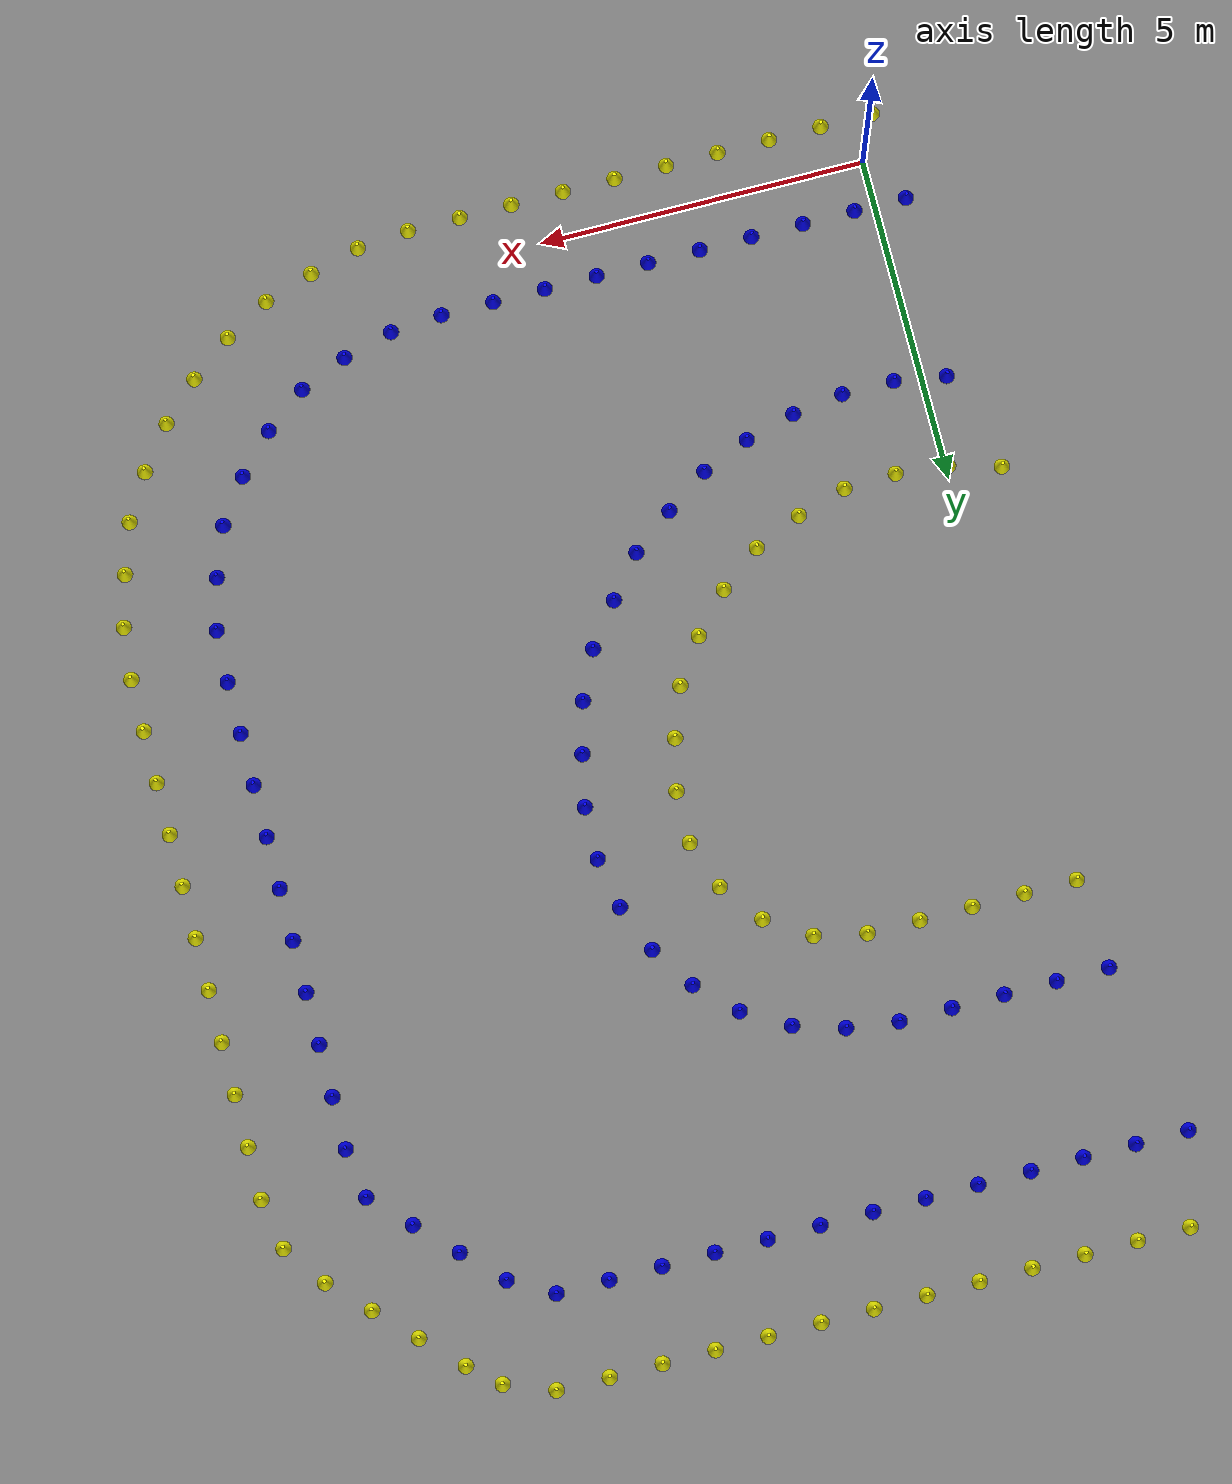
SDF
<sdf version="1.9">
 <world name="flw_cone_track_from_walls_lane_origin">
  <model name="ground_plane">
   <static>true</static>
   <link name="link">
    <collision name="collision">
     <geometry><plane><normal>0 0 1</normal><size>100 100</size></plane></geometry>
     <surface><friction><ode><mu>1.0</mu><mu2>1.0</mu2></ode></friction></surface>
    </collision>
    <visual name="visual">
     <geometry><plane><normal>0 0 1</normal><size>100 100</size></plane></geometry>
     <material>
      <ambient>0.5 0.5 0.5 1</ambient>
      <diffuse>0.5 0.5 0.5 1</diffuse>
      <specular>0.1 0.1 0.1 1</specular>
     </material>
    </visual>
   </link>
  </model>
  <include>
   <name>yellow_cone_outer_000</name>
   <uri>model://yellow_cone</uri>
   <pose>-0.8147 5.0183 0.0000 0 0 2.6834</pose>
  </include>
  <include>
   <name>yellow_cone_outer_066</name>
   <uri>model://yellow_cone</uri>
   <pose>-0.3176 -0.6903 0.0000 0 0 0.0000</pose>
  </include>
  <include>
   <name>yellow_cone_outer_067</name>
   <uri>model://yellow_cone</uri>
   <pose>0.4811 -0.6903 0.0000 0 0 0.0000</pose>
  </include>
  <include>
   <name>yellow_cone_outer_068</name>
   <uri>model://yellow_cone</uri>
   <pose>1.2799 -0.6903 0.0000 0 0 0.0000</pose>
  </include>
  <include>
   <name>yellow_cone_outer_069</name>
   <uri>model://yellow_cone</uri>
   <pose>2.0786 -0.6903 0.0000 0 0 0.0000</pose>
  </include>
  <include>
   <name>yellow_cone_outer_070</name>
   <uri>model://yellow_cone</uri>
   <pose>2.8773 -0.6903 0.0000 0 0 0.0000</pose>
  </include>
  <include>
   <name>yellow_cone_outer_071</name>
   <uri>model://yellow_cone</uri>
   <pose>3.6761 -0.6903 0.0000 0 0 0.0000</pose>
  </include>
  <include>
   <name>yellow_cone_outer_072</name>
   <uri>model://yellow_cone</uri>
   <pose>4.4748 -0.6903 0.0000 0 0 0.0000</pose>
  </include>
  <include>
   <name>yellow_cone_outer_073</name>
   <uri>model://yellow_cone</uri>
   <pose>5.2736 -0.6903 0.0000 0 0 0.0000</pose>
  </include>
  <include>
   <name>yellow_cone_outer_074</name>
   <uri>model://yellow_cone</uri>
   <pose>6.0723 -0.6903 0.0000 0 0 0.0000</pose>
  </include>
  <include>
   <name>yellow_cone_outer_075</name>
   <uri>model://yellow_cone</uri>
   <pose>6.8710 -0.6879 0.0000 0 0 0.0654</pose>
  </include>
  <include>
   <name>yellow_cone_outer_076</name>
   <uri>model://yellow_cone</uri>
   <pose>7.6651 -0.6181 0.0000 0 0 0.2618</pose>
  </include>
  <include>
   <name>yellow_cone_outer_077</name>
   <uri>model://yellow_cone</uri>
   <pose>8.4367 -0.4113 0.0000 0 0 0.2618</pose>
  </include>
  <include>
   <name>yellow_cone_outer_078</name>
   <uri>model://yellow_cone</uri>
   <pose>9.1942 -0.1674 0.0000 0 0 0.4582</pose>
  </include>
  <include>
   <name>yellow_cone_outer_079</name>
   <uri>model://yellow_cone</uri>
   <pose>9.8839 0.2288 0.0000 0 0 0.6545</pose>
  </include>
  <include>
   <name>yellow_cone_outer_080</name>
   <uri>model://yellow_cone</uri>
   <pose>10.5176 0.7150 0.0000 0 0 0.6545</pose>
  </include>
  <include>
   <name>yellow_cone_outer_081</name>
   <uri>model://yellow_cone</uri>
   <pose>11.0831 1.2694 0.0000 0 0 0.9163</pose>
  </include>
  <include>
   <name>yellow_cone_outer_082</name>
   <uri>model://yellow_cone</uri>
   <pose>11.5693 1.9031 0.0000 0 0 0.9163</pose>
  </include>
  <include>
   <name>yellow_cone_outer_083</name>
   <uri>model://yellow_cone</uri>
   <pose>11.9755 2.5867 0.0000 0 0 1.1126</pose>
  </include>
  <include>
   <name>yellow_cone_outer_084</name>
   <uri>model://yellow_cone</uri>
   <pose>12.2304 3.3400 0.0000 0 0 1.3090</pose>
  </include>
  <include>
   <name>yellow_cone_outer_085</name>
   <uri>model://yellow_cone</uri>
   <pose>12.4371 4.1116 0.0000 0 0 1.3090</pose>
  </include>
  <include>
   <name>yellow_cone_outer_086</name>
   <uri>model://yellow_cone</uri>
   <pose>12.5186 4.9038 0.0000 0 0 1.5053</pose>
  </include>
  <include>
   <name>yellow_cone_outer_087</name>
   <uri>model://yellow_cone</uri>
   <pose>12.5249 5.7023 0.0000 0 0 1.5708</pose>
  </include>
  <include>
   <name>yellow_cone_outer_088</name>
   <uri>model://yellow_cone</uri>
   <pose>12.5249 6.5011 0.0000 0 0 1.5708</pose>
  </include>
  <include>
   <name>yellow_cone_outer_089</name>
   <uri>model://yellow_cone</uri>
   <pose>12.5249 7.2998 0.0000 0 0 1.5708</pose>
  </include>
  <include>
   <name>yellow_cone_outer_090</name>
   <uri>model://yellow_cone</uri>
   <pose>12.5249 8.0986 0.0000 0 0 1.5708</pose>
  </include>
  <include>
   <name>yellow_cone_outer_091</name>
   <uri>model://yellow_cone</uri>
   <pose>12.5249 8.8973 0.0000 0 0 1.5708</pose>
  </include>
  <include>
   <name>yellow_cone_outer_092</name>
   <uri>model://yellow_cone</uri>
   <pose>12.5249 9.6961 0.0000 0 0 1.5708</pose>
  </include>
  <include>
   <name>yellow_cone_outer_093</name>
   <uri>model://yellow_cone</uri>
   <pose>12.5249 10.4948 0.0000 0 0 1.5708</pose>
  </include>
  <include>
   <name>yellow_cone_outer_094</name>
   <uri>model://yellow_cone</uri>
   <pose>12.5249 11.2936 0.0000 0 0 1.5708</pose>
  </include>
  <include>
   <name>yellow_cone_outer_095</name>
   <uri>model://yellow_cone</uri>
   <pose>12.5249 12.0923 0.0000 0 0 1.5708</pose>
  </include>
  <include>
   <name>yellow_cone_outer_096</name>
   <uri>model://yellow_cone</uri>
   <pose>12.5249 12.8910 0.0000 0 0 1.5708</pose>
  </include>
  <include>
   <name>yellow_cone_outer_097</name>
   <uri>model://yellow_cone</uri>
   <pose>12.3825 13.6706 0.0000 0 0 2.0944</pose>
  </include>
  <include>
   <name>yellow_cone_outer_098</name>
   <uri>model://yellow_cone</uri>
   <pose>11.9139 14.3110 0.0000 0 0 2.3563</pose>
  </include>
  <include>
   <name>yellow_cone_outer_099</name>
   <uri>model://yellow_cone</uri>
   <pose>11.3491 14.8758 0.0000 0 0 2.3563</pose>
  </include>
  <include>
   <name>yellow_cone_outer_100</name>
   <uri>model://yellow_cone</uri>
   <pose>10.7842 15.4405 0.0000 0 0 2.3563</pose>
  </include>
  <include>
   <name>yellow_cone_outer_101</name>
   <uri>model://yellow_cone</uri>
   <pose>10.2193 16.0052 0.0000 0 0 2.3563</pose>
  </include>
  <include>
   <name>yellow_cone_outer_102</name>
   <uri>model://yellow_cone</uri>
   <pose>9.7643 16.3983 0.0000 0 0 2.6180</pose>
  </include>
  <include>
   <name>yellow_cone_outer_103</name>
   <uri>model://yellow_cone</uri>
   <pose>9.0244 16.6778 0.0000 0 0 3.0761</pose>
  </include>
  <include>
   <name>yellow_cone_outer_104</name>
   <uri>model://yellow_cone</uri>
   <pose>8.2261 16.6903 0.0000 0 0 3.1416</pose>
  </include>
  <include>
   <name>yellow_cone_outer_105</name>
   <uri>model://yellow_cone</uri>
   <pose>7.4273 16.6903 0.0000 0 0 3.1416</pose>
  </include>
  <include>
   <name>yellow_cone_outer_106</name>
   <uri>model://yellow_cone</uri>
   <pose>6.6286 16.6903 0.0000 0 0 3.1416</pose>
  </include>
  <include>
   <name>yellow_cone_outer_107</name>
   <uri>model://yellow_cone</uri>
   <pose>5.8298 16.6903 0.0000 0 0 3.1416</pose>
  </include>
  <include>
   <name>yellow_cone_outer_108</name>
   <uri>model://yellow_cone</uri>
   <pose>5.0311 16.6903 0.0000 0 0 3.1416</pose>
  </include>
  <include>
   <name>yellow_cone_outer_109</name>
   <uri>model://yellow_cone</uri>
   <pose>4.2323 16.6903 0.0000 0 0 3.1416</pose>
  </include>
  <include>
   <name>yellow_cone_outer_110</name>
   <uri>model://yellow_cone</uri>
   <pose>3.4336 16.6903 0.0000 0 0 3.1416</pose>
  </include>
  <include>
   <name>yellow_cone_outer_111</name>
   <uri>model://yellow_cone</uri>
   <pose>2.6348 16.6903 0.0000 0 0 3.1416</pose>
  </include>
  <include>
   <name>yellow_cone_outer_112</name>
   <uri>model://yellow_cone</uri>
   <pose>1.8361 16.6903 0.0000 0 0 3.1416</pose>
  </include>
  <include>
   <name>yellow_cone_outer_113</name>
   <uri>model://yellow_cone</uri>
   <pose>1.0373 16.6903 0.0000 0 0 3.1416</pose>
  </include>
  <include>
   <name>yellow_cone_outer_114</name>
   <uri>model://yellow_cone</uri>
   <pose>0.2386 16.6903 0.0000 0 0 3.1416</pose>
  </include>
  <include>
   <name>yellow_cone_outer_115</name>
   <uri>model://yellow_cone</uri>
   <pose>-0.5602 16.6903 0.0000 0 0 3.1416</pose>
  </include>
  <include>
   <name>yellow_cone_outer_126</name>
   <uri>model://yellow_cone</uri>
   <pose>-0.2813 11.3097 0.0000 0 0 0.0000</pose>
  </include>
  <include>
   <name>yellow_cone_outer_127</name>
   <uri>model://yellow_cone</uri>
   <pose>0.5174 11.3097 0.0000 0 0 0.0000</pose>
  </include>
  <include>
   <name>yellow_cone_outer_128</name>
   <uri>model://yellow_cone</uri>
   <pose>1.3162 11.3097 0.0000 0 0 0.0000</pose>
  </include>
  <include>
   <name>yellow_cone_outer_129</name>
   <uri>model://yellow_cone</uri>
   <pose>2.1149 11.3097 0.0000 0 0 0.0000</pose>
  </include>
  <include>
   <name>yellow_cone_outer_130</name>
   <uri>model://yellow_cone</uri>
   <pose>2.9135 11.3046 0.0000 0 0 -0.0654</pose>
  </include>
  <include>
   <name>yellow_cone_outer_131</name>
   <uri>model://yellow_cone</uri>
   <pose>3.6922 11.1410 0.0000 0 0 -0.2618</pose>
  </include>
  <include>
   <name>yellow_cone_outer_132</name>
   <uri>model://yellow_cone</uri>
   <pose>4.3618 10.7146 0.0000 0 0 -0.6545</pose>
  </include>
  <include>
   <name>yellow_cone_outer_133</name>
   <uri>model://yellow_cone</uri>
   <pose>4.8485 10.0917 0.0000 0 0 -1.0472</pose>
  </include>
  <include>
   <name>yellow_cone_outer_134</name>
   <uri>model://yellow_cone</uri>
   <pose>5.1131 9.3441 0.0000 0 0 -1.3090</pose>
  </include>
  <include>
   <name>yellow_cone_outer_135</name>
   <uri>model://yellow_cone</uri>
   <pose>5.1096 8.5470 0.0000 0 0 -1.5906</pose>
  </include>
  <include>
   <name>yellow_cone_outer_136</name>
   <uri>model://yellow_cone</uri>
   <pose>4.9291 7.7718 0.0000 0 0 -1.8326</pose>
  </include>
  <include>
   <name>yellow_cone_outer_137</name>
   <uri>model://yellow_cone</uri>
   <pose>4.6558 7.0253 0.0000 0 0 -2.0289</pose>
  </include>
  <include>
   <name>yellow_cone_outer_138</name>
   <uri>model://yellow_cone</uri>
   <pose>4.2030 6.3708 0.0000 0 0 -2.2253</pose>
  </include>
  <include>
   <name>yellow_cone_outer_139</name>
   <uri>model://yellow_cone</uri>
   <pose>3.6666 5.7873 0.0000 0 0 -2.4871</pose>
  </include>
  <include>
   <name>yellow_cone_outer_140</name>
   <uri>model://yellow_cone</uri>
   <pose>3.0329 5.3010 0.0000 0 0 -2.4871</pose>
  </include>
  <include>
   <name>yellow_cone_outer_141</name>
   <uri>model://yellow_cone</uri>
   <pose>2.3021 4.9830 0.0000 0 0 -2.7489</pose>
  </include>
  <include>
   <name>yellow_cone_outer_142</name>
   <uri>model://yellow_cone</uri>
   <pose>1.5404 4.7556 0.0000 0 0 -2.9452</pose>
  </include>
  <include>
   <name>yellow_cone_outer_143</name>
   <uri>model://yellow_cone</uri>
   <pose>0.7445 4.7271 0.0000 0 0 3.1416</pose>
  </include>
  <include>
   <name>yellow_cone_outer_144</name>
   <uri>model://yellow_cone</uri>
   <pose>-0.0431 4.8116 0.0000 0 0 2.8798</pose>
  </include>
  <include>
   <name>blue_cone_inner_028</name>
   <uri>model://blue_cone</uri>
   <pose>-0.3733 3.4831 0.0000 0 0 -0.2618</pose>
  </include>
  <include>
   <name>blue_cone_inner_029</name>
   <uri>model://blue_cone</uri>
   <pose>0.4086 3.3584 0.0000 0 0 0.0000</pose>
  </include>
  <include>
   <name>blue_cone_inner_030</name>
   <uri>model://blue_cone</uri>
   <pose>1.2069 3.3584 0.0000 0 0 0.0000</pose>
  </include>
  <include>
   <name>blue_cone_inner_031</name>
   <uri>model://blue_cone</uri>
   <pose>1.9907 3.4692 0.0000 0 0 0.2618</pose>
  </include>
  <include>
   <name>blue_cone_inner_032</name>
   <uri>model://blue_cone</uri>
   <pose>2.7618 3.6758 0.0000 0 0 0.2618</pose>
  </include>
  <include>
   <name>blue_cone_inner_033</name>
   <uri>model://blue_cone</uri>
   <pose>3.4957 3.9813 0.0000 0 0 0.4581</pose>
  </include>
  <include>
   <name>blue_cone_inner_034</name>
   <uri>model://blue_cone</uri>
   <pose>4.1503 4.4332 0.0000 0 0 0.6545</pose>
  </include>
  <include>
   <name>blue_cone_inner_035</name>
   <uri>model://blue_cone</uri>
   <pose>4.7837 4.9192 0.0000 0 0 0.6545</pose>
  </include>
  <include>
   <name>blue_cone_inner_036</name>
   <uri>model://blue_cone</uri>
   <pose>5.2870 5.5352 0.0000 0 0 0.9163</pose>
  </include>
  <include>
   <name>blue_cone_inner_037</name>
   <uri>model://blue_cone</uri>
   <pose>5.7701 6.1703 0.0000 0 0 1.1126</pose>
  </include>
  <include>
   <name>blue_cone_inner_038</name>
   <uri>model://blue_cone</uri>
   <pose>6.1102 6.8912 0.0000 0 0 1.3090</pose>
  </include>
  <include>
   <name>blue_cone_inner_039</name>
   <uri>model://blue_cone</uri>
   <pose>6.3168 7.6624 0.0000 0 0 1.3090</pose>
  </include>
  <include>
   <name>blue_cone_inner_040</name>
   <uri>model://blue_cone</uri>
   <pose>6.4787 8.4397 0.0000 0 0 1.5568</pose>
  </include>
  <include>
   <name>blue_cone_inner_041</name>
   <uri>model://blue_cone</uri>
   <pose>6.4899 9.2380 0.0000 0 0 1.5568</pose>
  </include>
  <include>
   <name>blue_cone_inner_042</name>
   <uri>model://blue_cone</uri>
   <pose>6.3498 10.0174 0.0000 0 0 1.8326</pose>
  </include>
  <include>
   <name>blue_cone_inner_043</name>
   <uri>model://blue_cone</uri>
   <pose>6.0492 10.7496 0.0000 0 0 2.0944</pose>
  </include>
  <include>
   <name>blue_cone_inner_044</name>
   <uri>model://blue_cone</uri>
   <pose>5.6035 11.4053 0.0000 0 0 2.3562</pose>
  </include>
  <include>
   <name>blue_cone_inner_045</name>
   <uri>model://blue_cone</uri>
   <pose>5.0296 11.9574 0.0000 0 0 2.6180</pose>
  </include>
  <include>
   <name>blue_cone_inner_046</name>
   <uri>model://blue_cone</uri>
   <pose>4.3382 12.3566 0.0000 0 0 2.6180</pose>
  </include>
  <include>
   <name>blue_cone_inner_047</name>
   <uri>model://blue_cone</uri>
   <pose>3.5776 12.5887 0.0000 0 0 2.8798</pose>
  </include>
  <include>
   <name>blue_cone_inner_048</name>
   <uri>model://blue_cone</uri>
   <pose>2.7895 12.6903 0.0000 0 0 3.1416</pose>
  </include>
  <include>
   <name>blue_cone_inner_049</name>
   <uri>model://blue_cone</uri>
   <pose>1.9912 12.6903 0.0000 0 0 3.1416</pose>
  </include>
  <include>
   <name>blue_cone_inner_050</name>
   <uri>model://blue_cone</uri>
   <pose>1.1928 12.6903 0.0000 0 0 3.1416</pose>
  </include>
  <include>
   <name>blue_cone_inner_051</name>
   <uri>model://blue_cone</uri>
   <pose>0.3945 12.6903 0.0000 0 0 3.1416</pose>
  </include>
  <include>
   <name>blue_cone_inner_052</name>
   <uri>model://blue_cone</uri>
   <pose>-0.4038 12.6903 0.0000 0 0 3.1416</pose>
  </include>
  <include>
   <name>blue_cone_inner_057</name>
   <uri>model://blue_cone</uri>
   <pose>-0.9060 15.3097 0.0000 0 0 0.0000</pose>
  </include>
  <include>
   <name>blue_cone_inner_058</name>
   <uri>model://blue_cone</uri>
   <pose>-0.1076 15.3097 0.0000 0 0 0.0000</pose>
  </include>
  <include>
   <name>blue_cone_inner_059</name>
   <uri>model://blue_cone</uri>
   <pose>0.6907 15.3097 0.0000 0 0 0.0000</pose>
  </include>
  <include>
   <name>blue_cone_inner_060</name>
   <uri>model://blue_cone</uri>
   <pose>1.4890 15.3097 0.0000 0 0 0.0000</pose>
  </include>
  <include>
   <name>blue_cone_inner_061</name>
   <uri>model://blue_cone</uri>
   <pose>2.2874 15.3097 0.0000 0 0 0.0000</pose>
  </include>
  <include>
   <name>blue_cone_inner_062</name>
   <uri>model://blue_cone</uri>
   <pose>3.0857 15.3097 0.0000 0 0 0.0000</pose>
  </include>
  <include>
   <name>blue_cone_inner_063</name>
   <uri>model://blue_cone</uri>
   <pose>3.8840 15.3097 0.0000 0 0 0.0000</pose>
  </include>
  <include>
   <name>blue_cone_inner_064</name>
   <uri>model://blue_cone</uri>
   <pose>4.6824 15.3097 0.0000 0 0 0.0000</pose>
  </include>
  <include>
   <name>blue_cone_inner_065</name>
   <uri>model://blue_cone</uri>
   <pose>5.4807 15.3097 0.0000 0 0 0.0000</pose>
  </include>
  <include>
   <name>blue_cone_inner_066</name>
   <uri>model://blue_cone</uri>
   <pose>6.2790 15.3097 0.0000 0 0 0.0000</pose>
  </include>
  <include>
   <name>blue_cone_inner_067</name>
   <uri>model://blue_cone</uri>
   <pose>7.0774 15.3097 0.0000 0 0 0.0000</pose>
  </include>
  <include>
   <name>blue_cone_inner_068</name>
   <uri>model://blue_cone</uri>
   <pose>7.8757 15.3097 0.0000 0 0 0.0000</pose>
  </include>
  <include>
   <name>blue_cone_inner_069</name>
   <uri>model://blue_cone</uri>
   <pose>8.6740 15.3097 0.0000 0 0 0.0000</pose>
  </include>
  <include>
   <name>blue_cone_inner_070</name>
   <uri>model://blue_cone</uri>
   <pose>9.3325 14.9397 0.0000 0 0 -0.7853</pose>
  </include>
  <include>
   <name>blue_cone_inner_071</name>
   <uri>model://blue_cone</uri>
   <pose>9.8970 14.3753 0.0000 0 0 -0.7853</pose>
  </include>
  <include>
   <name>blue_cone_inner_072</name>
   <uri>model://blue_cone</uri>
   <pose>10.4616 13.8109 0.0000 0 0 -0.7853</pose>
  </include>
  <include>
   <name>blue_cone_inner_073</name>
   <uri>model://blue_cone</uri>
   <pose>11.0262 13.2464 0.0000 0 0 -0.7853</pose>
  </include>
  <include>
   <name>blue_cone_inner_074</name>
   <uri>model://blue_cone</uri>
   <pose>11.1443 12.4832 0.0000 0 0 -1.5708</pose>
  </include>
  <include>
   <name>blue_cone_inner_075</name>
   <uri>model://blue_cone</uri>
   <pose>11.1443 11.6848 0.0000 0 0 -1.5708</pose>
  </include>
  <include>
   <name>blue_cone_inner_076</name>
   <uri>model://blue_cone</uri>
   <pose>11.1443 10.8865 0.0000 0 0 -1.5708</pose>
  </include>
  <include>
   <name>blue_cone_inner_077</name>
   <uri>model://blue_cone</uri>
   <pose>11.1443 10.0882 0.0000 0 0 -1.5708</pose>
  </include>
  <include>
   <name>blue_cone_inner_078</name>
   <uri>model://blue_cone</uri>
   <pose>11.1443 9.2899 0.0000 0 0 -1.5708</pose>
  </include>
  <include>
   <name>blue_cone_inner_079</name>
   <uri>model://blue_cone</uri>
   <pose>11.1443 8.4915 0.0000 0 0 -1.5708</pose>
  </include>
  <include>
   <name>blue_cone_inner_080</name>
   <uri>model://blue_cone</uri>
   <pose>11.1443 7.6932 0.0000 0 0 -1.5708</pose>
  </include>
  <include>
   <name>blue_cone_inner_081</name>
   <uri>model://blue_cone</uri>
   <pose>11.1443 6.8949 0.0000 0 0 -1.5708</pose>
  </include>
  <include>
   <name>blue_cone_inner_082</name>
   <uri>model://blue_cone</uri>
   <pose>11.1443 6.0965 0.0000 0 0 -1.5708</pose>
  </include>
  <include>
   <name>blue_cone_inner_083</name>
   <uri>model://blue_cone</uri>
   <pose>11.1443 5.2982 0.0000 0 0 -1.5708</pose>
  </include>
  <include>
   <name>blue_cone_inner_084</name>
   <uri>model://blue_cone</uri>
   <pose>11.1116 4.5009 0.0000 0 0 -1.6363</pose>
  </include>
  <include>
   <name>blue_cone_inner_085</name>
   <uri>model://blue_cone</uri>
   <pose>10.9173 3.7278 0.0000 0 0 -1.8326</pose>
  </include>
  <include>
   <name>blue_cone_inner_086</name>
   <uri>model://blue_cone</uri>
   <pose>10.6358 2.9848 0.0000 0 0 -2.0290</pose>
  </include>
  <include>
   <name>blue_cone_inner_087</name>
   <uri>model://blue_cone</uri>
   <pose>10.1758 2.3353 0.0000 0 0 -2.2253</pose>
  </include>
  <include>
   <name>blue_cone_inner_088</name>
   <uri>model://blue_cone</uri>
   <pose>9.6315 1.7603 0.0000 0 0 -2.4871</pose>
  </include>
  <include>
   <name>blue_cone_inner_089</name>
   <uri>model://blue_cone</uri>
   <pose>8.9981 1.2743 0.0000 0 0 -2.4871</pose>
  </include>
  <include>
   <name>blue_cone_inner_090</name>
   <uri>model://blue_cone</uri>
   <pose>8.2678 0.9604 0.0000 0 0 -2.8798</pose>
  </include>
  <include>
   <name>blue_cone_inner_091</name>
   <uri>model://blue_cone</uri>
   <pose>7.4967 0.7538 0.0000 0 0 -2.8798</pose>
  </include>
  <include>
   <name>blue_cone_inner_092</name>
   <uri>model://blue_cone</uri>
   <pose>6.7030 0.6903 0.0000 0 0 -3.1416</pose>
  </include>
  <include>
   <name>blue_cone_inner_093</name>
   <uri>model://blue_cone</uri>
   <pose>5.9047 0.6903 0.0000 0 0 -3.1416</pose>
  </include>
  <include>
   <name>blue_cone_inner_094</name>
   <uri>model://blue_cone</uri>
   <pose>5.1064 0.6903 0.0000 0 0 -3.1416</pose>
  </include>
  <include>
   <name>blue_cone_inner_095</name>
   <uri>model://blue_cone</uri>
   <pose>4.3080 0.6903 0.0000 0 0 -3.1416</pose>
  </include>
  <include>
   <name>blue_cone_inner_096</name>
   <uri>model://blue_cone</uri>
   <pose>3.5097 0.6903 0.0000 0 0 -3.1416</pose>
  </include>
  <include>
   <name>blue_cone_inner_097</name>
   <uri>model://blue_cone</uri>
   <pose>2.7114 0.6903 0.0000 0 0 -3.1416</pose>
  </include>
  <include>
   <name>blue_cone_inner_098</name>
   <uri>model://blue_cone</uri>
   <pose>1.9131 0.6903 0.0000 0 0 -3.1416</pose>
  </include>
  <include>
   <name>blue_cone_inner_099</name>
   <uri>model://blue_cone</uri>
   <pose>1.1147 0.6903 0.0000 0 0 -3.1416</pose>
  </include>
  <include>
   <name>blue_cone_inner_100</name>
   <uri>model://blue_cone</uri>
   <pose>0.3164 0.6903 0.0000 0 0 -3.1416</pose>
  </include>
  <include>
   <name>blue_cone_inner_101</name>
   <uri>model://blue_cone</uri>
   <pose>-0.4819 0.6903 0.0000 0 0 -3.1416</pose>
  </include>
 </world>
</sdf>
